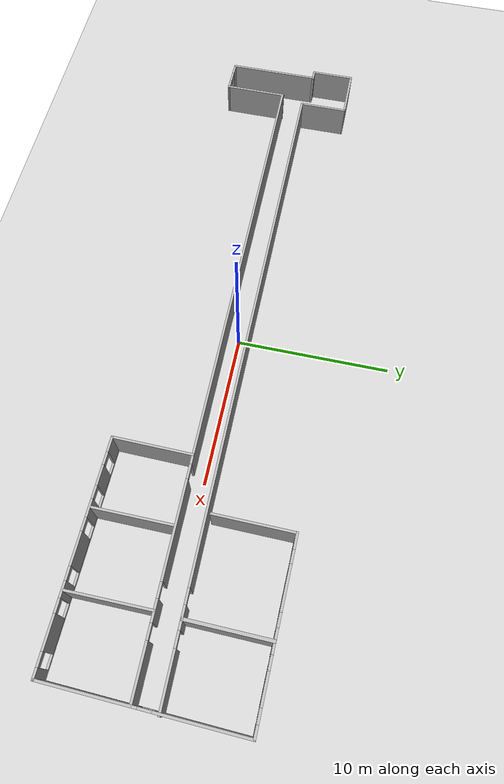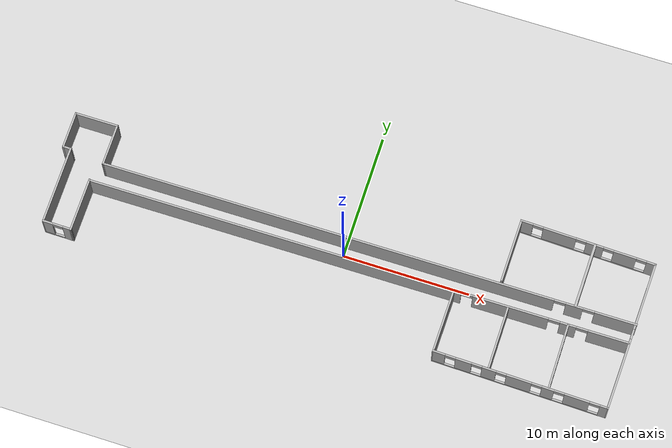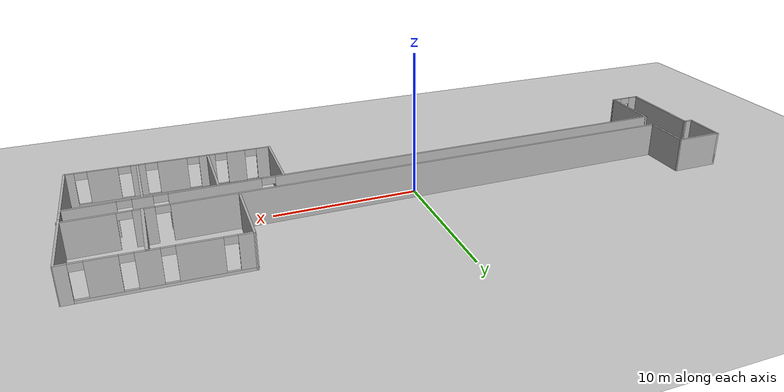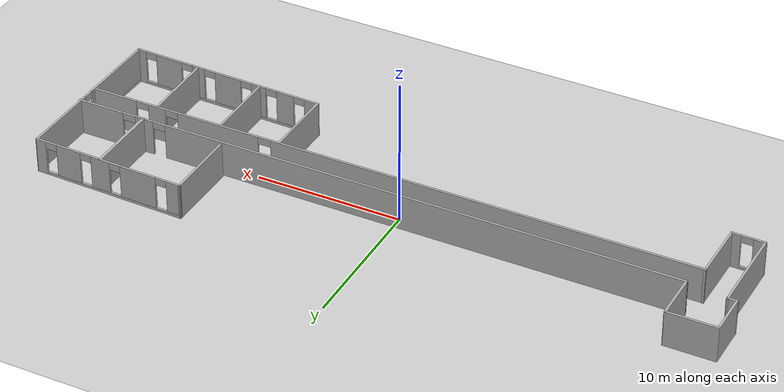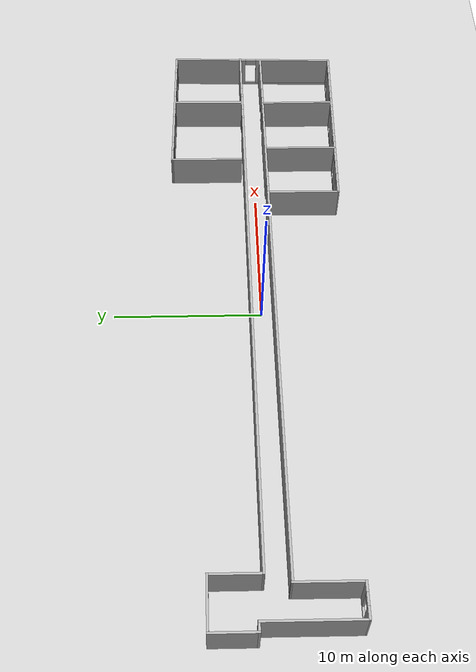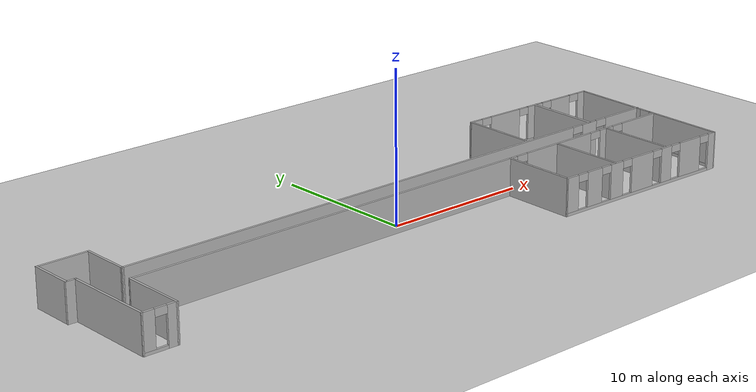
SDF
<?xml version="1.0" ?>
<sdf version="1.6">
  <world name="ico">

    <!-- A global light source -->
    <include>
      <uri>https://fuel.gazebosim.org/1.0/OpenRobotics/models/sun</uri>
    </include>
    <!-- A ground plane -->
    <include>
      <uri>https://fuel.gazebosim.org/1.0/OpenRobotics/models/Ground Plane</uri>
    </include>
    <!-- Turn off the built-in grid -->
    <scene>
      <grid>false</grid>
    </scene>

    <include>
      <uri>model://pbr_gazebo/models/ico</uri>
      <pose>0 0 0 0 0 0</pose>
    </include>

  </world>
</sdf>

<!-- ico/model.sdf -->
<sdf version='1.6'>

  <model name='ico_v1'>
      <pose>0.0 0.0 0 0 -0 0</pose>
      <link name='Wall_1'>
        <pose>22.5814 -0.145499 0 0 0 -1.59766</pose>
        <visual name='Wall_1_Visual_0'>
          <pose frame=''>-3.25721 0 1.25 0 -0 0</pose>
          <geometry>
            <box>
              <size>5.44978 0.15 2.5</size>
            </box>
          </geometry>
          <material> <!-- Gazebo/Grey -->
            <ambient>1 1 1 1</ambient>
            <diffuse>0.7 0.7 0.7 1</diffuse>
            <specular>0.01 0.01 0.01 1</specular>
          </material>
        </visual>
        <collision name='Wall_1_Collision_0'>
          <geometry>
            <box>
              <size>5.44978 0.15 2.5</size>
            </box>
          </geometry>
          <pose frame=''>-3.25721 0 1.25 0 -0 0</pose>
          <max_contacts>10</max_contacts>
          <surface>
            <contact>
              <ode/>
            </contact>
            <bounce/>
            <friction>
              <ode/>
            </friction>
          </surface>
        </collision>
        <visual name='Wall_1_Visual_1'>
          <pose frame=''>2.72489 0 0.1 0 -0 0</pose>
          <geometry>
            <box>
              <size>6.51441 0.15 0.2</size>
            </box>
          </geometry>
          <material> <!-- Gazebo/Grey -->
            <ambient>1 1 1 1</ambient>
            <diffuse>0.7 0.7 0.7 1</diffuse>
            <specular>0.01 0.01 0.01 1</specular>
          </material>
        </visual>
        <collision name='Wall_1_Collision_1'>
          <geometry>
            <box>
              <size>6.51441 0.15 0.2</size>
            </box>
          </geometry>
          <pose frame=''>2.72489 0 0.1 0 -0 0</pose>
          <max_contacts>10</max_contacts>
          <surface>
            <contact>
              <ode/>
            </contact>
            <bounce/>
            <friction>
              <ode/>
            </friction>
          </surface>
        </collision>
        <visual name='Wall_1_Visual_2'>
          <pose frame=''>3.12489 0 1.35 0 -0 0</pose>
          <geometry>
            <box>
              <size>5.71441 0.15 2.3</size>
            </box>
          </geometry>
          <material> <!-- Gazebo/Grey -->
            <ambient>1 1 1 1</ambient>
            <diffuse>0.7 0.7 0.7 1</diffuse>
            <specular>0.01 0.01 0.01 1</specular>
          </material>
        </visual>
        <collision name='Wall_1_Collision_2'>
          <geometry>
            <box>
              <size>5.71441 0.15 2.3</size>
            </box>
          </geometry>
          <pose frame=''>3.12489 0 1.35 0 -0 0</pose>
          <max_contacts>10</max_contacts>
          <surface>
            <contact>
              <ode/>
            </contact>
            <bounce/>
            <friction>
              <ode/>
            </friction>
          </surface>
        </collision>
        <visual name='Wall_1_Visual_3'>
          <pose frame=''>-0.132319 0 2.25 0 -0 0</pose>
          <geometry>
            <box>
              <size>0.8 0.15 0.5</size>
            </box>
          </geometry>
          <material> <!-- Gazebo/Grey -->
            <ambient>1 1 1 1</ambient>
            <diffuse>0.7 0.7 0.7 1</diffuse>
            <specular>0.01 0.01 0.01 1</specular>
          </material>
        </visual>
        <collision name='Wall_1_Collision_3'>
          <geometry>
            <box>
              <size>0.8 0.15 0.5</size>
            </box>
          </geometry>
          <pose frame=''>-0.132319 0 2.25 0 -0 0</pose>
          <max_contacts>10</max_contacts>
          <surface>
            <contact>
              <ode/>
            </contact>
            <bounce/>
            <friction>
              <ode/>
            </friction>
          </surface>
        </collision>
        <self_collide>0</self_collide>
        <kinematic>0</kinematic>
      </link>
      <link name='Wall_11'>
        <pose frame=''>1.63642 0.752539 0 0 -0 0.001887</pose>
        <visual name='Wall_11_Visual_0'>
          <pose frame=''>-3.21659 0 1.25 0 -0 0</pose>
          <geometry>
            <box>
              <size>35.7724 0.15 2.5</size>
            </box>
          </geometry>
          <material> <!-- Gazebo/Grey -->
            <ambient>1 1 1 1</ambient>
            <diffuse>0.7 0.7 0.7 1</diffuse>
            <specular>0.01 0.01 0.01 1</specular>
          </material>
        </visual>
        <collision name='Wall_11_Collision_0'>
          <geometry>
            <box>
              <size>35.7724 0.15 2.5</size>
            </box>
          </geometry>
          <pose frame=''>-3.21659 0 1.25 0 -0 0</pose>
          <max_contacts>10</max_contacts>
          <surface>
            <contact>
              <ode/>
            </contact>
            <bounce/>
            <friction>
              <ode/>
            </friction>
          </surface>
        </collision>
        <visual name='Wall_11_Visual_1'>
          <pose frame=''>16.233 0 1.25 0 -0 0</pose>
          <geometry>
            <box>
              <size>1.32685 0.15 2.5</size>
            </box>
          </geometry>
          <material> <!-- Gazebo/Grey -->
            <ambient>1 1 1 1</ambient>
            <diffuse>0.7 0.7 0.7 1</diffuse>
            <specular>0.01 0.01 0.01 1</specular>
          </material>
        </visual>
        <collision name='Wall_11_Collision_1'>
          <geometry>
            <box>
              <size>1.32685 0.15 2.5</size>
            </box>
          </geometry>
          <pose frame=''>16.233 0 1.25 0 -0 0</pose>
          <max_contacts>10</max_contacts>
          <surface>
            <contact>
              <ode/>
            </contact>
            <bounce/>
            <friction>
              <ode/>
            </friction>
          </surface>
        </collision>
        <visual name='Wall_11_Visual_2'>
          <pose frame=''>19.4496 0 1.25 0 -0 0</pose>
          <geometry>
            <box>
              <size>3.30634 0.15 2.5</size>
            </box>
          </geometry>
          <material> <!-- Gazebo/Grey -->
            <ambient>1 1 1 1</ambient>
            <diffuse>0.7 0.7 0.7 1</diffuse>
            <specular>0.01 0.01 0.01 1</specular>
          </material>
        </visual>
        <collision name='Wall_11_Collision_2'>
          <geometry>
            <box>
              <size>3.30634 0.15 2.5</size>
            </box>
          </geometry>
          <pose frame=''>19.4496 0 1.25 0 -0 0</pose>
          <max_contacts>10</max_contacts>
          <surface>
            <contact>
              <ode/>
            </contact>
            <bounce/>
            <friction>
              <ode/>
            </friction>
          </surface>
        </collision>
        <visual name='Wall_11_Visual_3'>
          <pose frame=''>15.1196 0 2.25 0 -0 0</pose>
          <geometry>
            <box>
              <size>0.9 0.15 0.5</size>
            </box>
          </geometry>
          <material> <!-- Gazebo/Grey -->
            <ambient>1 1 1 1</ambient>
            <diffuse>0.7 0.7 0.7 1</diffuse>
            <specular>0.01 0.01 0.01 1</specular>
          </material>
        </visual>
        <collision name='Wall_11_Collision_3'>
          <geometry>
            <box>
              <size>0.9 0.15 0.5</size>
            </box>
          </geometry>
          <pose frame=''>15.1196 0 2.25 0 -0 0</pose>
          <max_contacts>10</max_contacts>
          <surface>
            <contact>
              <ode/>
            </contact>
            <bounce/>
            <friction>
              <ode/>
            </friction>
          </surface>
        </collision>
        <visual name='Wall_11_Visual_4'>
          <pose frame=''>17.3465 0 2.25 0 -0 0</pose>
          <geometry>
            <box>
              <size>0.9 0.15 0.5</size>
            </box>
          </geometry>
          <material> <!-- Gazebo/Grey -->
            <ambient>1 1 1 1</ambient>
            <diffuse>0.7 0.7 0.7 1</diffuse>
            <specular>0.01 0.01 0.01 1</specular>
          </material>
        </visual>
        <collision name='Wall_11_Collision_4'>
          <geometry>
            <box>
              <size>0.9 0.15 0.5</size>
            </box>
          </geometry>
          <pose frame=''>17.3465 0 2.25 0 -0 0</pose>
          <max_contacts>10</max_contacts>
          <surface>
            <contact>
              <ode/>
            </contact>
            <bounce/>
            <friction>
              <ode/>
            </friction>
          </surface>
        </collision>
        <self_collide>0</self_collide>
        <kinematic>0</kinematic>
      </link>
      <link name='Wall_13'>
        <pose frame=''>1.29371 -0.816594 0 0 0 -3.13848</pose>
        <visual name='Wall_13_Visual_0'>
          <pose frame=''>-19.6869 0 1.25 0 -0 0</pose>
          <geometry>
            <box>
              <size>3.22871 0.15 2.5</size>
            </box>
          </geometry>
          <material> <!-- Gazebo/Grey -->
            <ambient>1 1 1 1</ambient>
            <diffuse>0.7 0.7 0.7 1</diffuse>
            <specular>0.01 0.01 0.01 1</specular>
          </material>
        </visual>
        <collision name='Wall_13_Collision_0'>
          <geometry>
            <box>
              <size>3.22871 0.15 2.5</size>
            </box>
          </geometry>
          <pose frame=''>-19.6869 0 1.25 0 -0 0</pose>
          <max_contacts>10</max_contacts>
          <surface>
            <contact>
              <ode/>
            </contact>
            <bounce/>
            <friction>
              <ode/>
            </friction>
          </surface>
        </collision>
        <visual name='Wall_13_Visual_1'>
          <pose frame=''>-16.5425 0 1.25 0 -0 0</pose>
          <geometry>
            <box>
              <size>1.25995 0.15 2.5</size>
            </box>
          </geometry>
          <material> <!-- Gazebo/Grey -->
            <ambient>1 1 1 1</ambient>
            <diffuse>0.7 0.7 0.7 1</diffuse>
            <specular>0.01 0.01 0.01 1</specular>
          </material>
        </visual>
        <collision name='Wall_13_Collision_1'>
          <geometry>
            <box>
              <size>1.25995 0.15 2.5</size>
            </box>
          </geometry>
          <pose frame=''>-16.5425 0 1.25 0 -0 0</pose>
          <max_contacts>10</max_contacts>
          <surface>
            <contact>
              <ode/>
            </contact>
            <bounce/>
            <friction>
              <ode/>
            </friction>
          </surface>
        </collision>
        <visual name='Wall_13_Visual_2'>
          <pose frame=''>-12.0715 0 1.25 0 -0 0</pose>
          <geometry>
            <box>
              <size>5.88212 0.15 2.5</size>
            </box>
          </geometry>
          <material> <!-- Gazebo/Grey -->
            <ambient>1 1 1 1</ambient>
            <diffuse>0.7 0.7 0.7 1</diffuse>
            <specular>0.01 0.01 0.01 1</specular>
          </material>
        </visual>
        <collision name='Wall_13_Collision_2'>
          <geometry>
            <box>
              <size>5.88212 0.15 2.5</size>
            </box>
          </geometry>
          <pose frame=''>-12.0715 0 1.25 0 -0 0</pose>
          <max_contacts>10</max_contacts>
          <surface>
            <contact>
              <ode/>
            </contact>
            <bounce/>
            <friction>
              <ode/>
            </friction>
          </surface>
        </collision>
        <visual name='Wall_13_Visual_3'>
          <pose frame=''>6.53539 0 1.25 0 -0 0</pose>
          <geometry>
            <box>
              <size>29.5317 0.15 2.5</size>
            </box>
          </geometry>
          <material> <!-- Gazebo/Grey -->
            <ambient>1 1 1 1</ambient>
            <diffuse>0.7 0.7 0.7 1</diffuse>
            <specular>0.01 0.01 0.01 1</specular>
          </material>
        </visual>
        <collision name='Wall_13_Collision_3'>
          <geometry>
            <box>
              <size>29.5317 0.15 2.5</size>
            </box>
          </geometry>
          <pose frame=''>6.53539 0 1.25 0 -0 0</pose>
          <max_contacts>10</max_contacts>
          <surface>
            <contact>
              <ode/>
            </contact>
            <bounce/>
            <friction>
              <ode/>
            </friction>
          </surface>
        </collision>
        <visual name='Wall_13_Visual_4'>
          <pose frame=''>-17.6225 0 2.25 0 -0 0</pose>
          <geometry>
            <box>
              <size>0.9 0.15 0.5</size>
            </box>
          </geometry>
          <material> <!-- Gazebo/Grey -->
            <ambient>1 1 1 1</ambient>
            <diffuse>0.7 0.7 0.7 1</diffuse>
            <specular>0.01 0.01 0.01 1</specular>
          </material>
        </visual>
        <collision name='Wall_13_Collision_4'>
          <geometry>
            <box>
              <size>0.9 0.15 0.5</size>
            </box>
          </geometry>
          <pose frame=''>-17.6225 0 2.25 0 -0 0</pose>
          <max_contacts>10</max_contacts>
          <surface>
            <contact>
              <ode/>
            </contact>
            <bounce/>
            <friction>
              <ode/>
            </friction>
          </surface>
        </collision>
        <visual name='Wall_13_Visual_5'>
          <pose frame=''>-15.4626 0 2.25 0 -0 0</pose>
          <geometry>
            <box>
              <size>0.9 0.15 0.5</size>
            </box>
          </geometry>
          <material> <!-- Gazebo/Grey -->
            <ambient>1 1 1 1</ambient>
            <diffuse>0.7 0.7 0.7 1</diffuse>
            <specular>0.01 0.01 0.01 1</specular>
          </material>
        </visual>
        <collision name='Wall_13_Collision_5'>
          <geometry>
            <box>
              <size>0.9 0.15 0.5</size>
            </box>
          </geometry>
          <pose frame=''>-15.4626 0 2.25 0 -0 0</pose>
          <max_contacts>10</max_contacts>
          <surface>
            <contact>
              <ode/>
            </contact>
            <bounce/>
            <friction>
              <ode/>
            </friction>
          </surface>
        </collision>
        <visual name='Wall_13_Visual_6'>
          <pose frame=''>-8.68046 0 2.25 0 -0 0</pose>
          <geometry>
            <box>
              <size>0.9 0.15 0.5</size>
            </box>
          </geometry>
          <material> <!-- Gazebo/Grey -->
            <ambient>1 1 1 1</ambient>
            <diffuse>0.7 0.7 0.7 1</diffuse>
            <specular>0.01 0.01 0.01 1</specular>
          </material>
        </visual>
        <collision name='Wall_13_Collision_6'>
          <geometry>
            <box>
              <size>0.9 0.15 0.5</size>
            </box>
          </geometry>
          <pose frame=''>-8.68046 0 2.25 0 -0 0</pose>
          <max_contacts>10</max_contacts>
          <surface>
            <contact>
              <ode/>
            </contact>
            <bounce/>
            <friction>
              <ode/>
            </friction>
          </surface>
        </collision>
        <self_collide>0</self_collide>
        <kinematic>0</kinematic>
      </link>
      <link name='Wall_14'>
        <collision name='Wall_14_Collision'>
          <geometry>
            <box>
              <size>4.3243 0.15 2.5</size>
            </box>
          </geometry>
          <pose frame=''>0 0 1.25 0 -0 0</pose>
          <max_contacts>10</max_contacts>
          <surface>
            <contact>
              <ode/>
            </contact>
            <bounce/>
            <friction>
              <ode/>
            </friction>
          </surface>
        </collision>
        <visual name='Wall_14_Visual'>
          <pose frame=''>0 0 1.25 0 -0 0</pose>
          <geometry>
            <box>
              <size>4.3243 0.15 2.5</size>
            </box>
          </geometry>
          <material> <!-- Gazebo/Grey -->
            <ambient>1 1 1 1</ambient>
            <diffuse>0.7 0.7 0.7 1</diffuse>
            <specular>0.01 0.01 0.01 1</specular>
          </material>
        </visual>
        <pose frame=''>-19.9395 -2.9399 0 0 0 -1.57427</pose>
        <self_collide>0</self_collide>
        <kinematic>0</kinematic>
      </link>
      <link name='Wall_15'>
        <pose frame=''>-21.0445 -5.0203 0 0 -0 3.13545</pose>
        <visual name='Wall_15_Visual_0'>
          <pose frame=''>-0.815889 0 1.25 0 -0 0</pose>
          <geometry>
            <box>
              <size>0.713613 0.15 2.5</size>
            </box>
          </geometry>
          <material> <!-- Gazebo/Grey -->
            <ambient>1 1 1 1</ambient>
            <diffuse>0.7 0.7 0.7 1</diffuse>
            <specular>0.01 0.01 0.01 1</specular>
          </material>
        </visual>
        <collision name='Wall_15_Collision_0'>
          <geometry>
            <box>
              <size>0.713613 0.15 2.5</size>
            </box>
          </geometry>
          <pose frame=''>-0.815889 0 1.25 0 -0 0</pose>
          <max_contacts>10</max_contacts>
          <surface>
            <contact>
              <ode/>
            </contact>
            <bounce/>
            <friction>
              <ode/>
            </friction>
          </surface>
        </collision>
        <visual name='Wall_15_Visual_1'>
          <pose frame=''>0.356806 0 0.1 0 -0 0</pose>
          <geometry>
            <box>
              <size>1.63178 0.15 0.2</size>
            </box>
          </geometry>
          <material> <!-- Gazebo/Grey -->
            <ambient>1 1 1 1</ambient>
            <diffuse>0.7 0.7 0.7 1</diffuse>
            <specular>0.01 0.01 0.01 1</specular>
          </material>
        </visual>
        <collision name='Wall_15_Collision_1'>
          <geometry>
            <box>
              <size>1.63178 0.15 0.2</size>
            </box>
          </geometry>
          <pose frame=''>0.356806 0 0.1 0 -0 0</pose>
          <max_contacts>10</max_contacts>
          <surface>
            <contact>
              <ode/>
            </contact>
            <bounce/>
            <friction>
              <ode/>
            </friction>
          </surface>
        </collision>
        <visual name='Wall_15_Visual_2'>
          <pose frame=''>0.756806 0 1.35 0 -0 0</pose>
          <geometry>
            <box>
              <size>0.831779 0.15 2.3</size>
            </box>
          </geometry>
          <material> <!-- Gazebo/Grey -->
            <ambient>1 1 1 1</ambient>
            <diffuse>0.7 0.7 0.7 1</diffuse>
            <specular>0.01 0.01 0.01 1</specular>
          </material>
        </visual>
        <collision name='Wall_15_Collision_2'>
          <geometry>
            <box>
              <size>0.831779 0.15 2.3</size>
            </box>
          </geometry>
          <pose frame=''>0.756806 0 1.35 0 -0 0</pose>
          <max_contacts>10</max_contacts>
          <surface>
            <contact>
              <ode/>
            </contact>
            <bounce/>
            <friction>
              <ode/>
            </friction>
          </surface>
        </collision>
        <visual name='Wall_15_Visual_3'>
          <pose frame=''>-0.059083 0 2.25 0 -0 0</pose>
          <geometry>
            <box>
              <size>0.8 0.15 0.5</size>
            </box>
          </geometry>
          <material> <!-- Gazebo/Grey -->
            <ambient>1 1 1 1</ambient>
            <diffuse>0.7 0.7 0.7 1</diffuse>
            <specular>0.01 0.01 0.01 1</specular>
          </material>
        </visual>
        <collision name='Wall_15_Collision_3'>
          <geometry>
            <box>
              <size>0.8 0.15 0.5</size>
            </box>
          </geometry>
          <pose frame=''>-0.059083 0 2.25 0 -0 0</pose>
          <max_contacts>10</max_contacts>
          <surface>
            <contact>
              <ode/>
            </contact>
            <bounce/>
            <friction>
              <ode/>
            </friction>
          </surface>
        </collision>
        <self_collide>0</self_collide>
        <kinematic>0</kinematic>
      </link>
      <link name='Wall_16'>
        <collision name='Wall_16_Collision'>
          <geometry>
            <box>
              <size>6.25 0.15 2.5</size>
            </box>
          </geometry>
          <pose frame=''>0 0 1.25 0 -0 0</pose>
          <max_contacts>10</max_contacts>
          <surface>
            <contact>
              <ode/>
            </contact>
            <bounce/>
            <friction>
              <ode/>
            </friction>
          </surface>
        </collision>
        <visual name='Wall_16_Visual'>
          <pose frame=''>0 0 1.25 0 -0 0</pose>
          <geometry>
            <box>
              <size>6.25 0.15 2.5</size>
            </box>
          </geometry>
          <material> <!-- Gazebo/Grey -->
            <ambient>1 1 1 1</ambient>
            <diffuse>0.7 0.7 0.7 1</diffuse>
            <specular>0.01 0.01 0.01 1</specular>
          </material>
        </visual>
        <pose frame=''>-22.1421 -1.96356 0 0 -0 1.5708</pose>
        <self_collide>0</self_collide>
        <kinematic>0</kinematic>
      </link>
      <link name='Wall_17'>
        <collision name='Wall_17_Collision'>
          <geometry>
            <box>
              <size>0.75 0.15 2.5</size>
            </box>
          </geometry>
          <pose frame=''>0 0 1.25 0 -0 0</pose>
          <max_contacts>10</max_contacts>
          <surface>
            <contact>
              <ode/>
            </contact>
            <bounce/>
            <friction>
              <ode/>
            </friction>
          </surface>
        </collision>
        <visual name='Wall_17_Visual'>
          <pose frame=''>0 0 1.25 0 -0 0</pose>
          <geometry>
            <box>
              <size>0.75 0.15 2.5</size>
            </box>
          </geometry>
          <material> <!-- Gazebo/Grey -->
            <ambient>1 1 1 1</ambient>
            <diffuse>0.7 0.7 0.7 1</diffuse>
            <specular>0.01 0.01 0.01 1</specular>
          </material>
        </visual>
        <pose frame=''>-22.4421 1.08644 0 0 -0 3.14159</pose>
        <self_collide>0</self_collide>
        <kinematic>0</kinematic>
      </link>
      <link name='Wall_18'>
        <collision name='Wall_18_Collision'>
          <geometry>
            <box>
              <size>3 0.15 2.5</size>
            </box>
          </geometry>
          <pose frame=''>0 0 1.25 0 -0 0</pose>
          <max_contacts>10</max_contacts>
          <surface>
            <contact>
              <ode/>
            </contact>
            <bounce/>
            <friction>
              <ode/>
            </friction>
          </surface>
        </collision>
        <visual name='Wall_18_Visual'>
          <pose frame=''>0 0 1.25 0 -0 0</pose>
          <geometry>
            <box>
              <size>3 0.15 2.5</size>
            </box>
          </geometry>
          <material> <!-- Gazebo/Grey -->
            <ambient>1 1 1 1</ambient>
            <diffuse>0.7 0.7 0.7 1</diffuse>
            <specular>0.01 0.01 0.01 1</specular>
          </material>
        </visual>
        <pose frame=''>-22.7421 2.51144 0 0 -0 1.5708</pose>
        <self_collide>0</self_collide>
        <kinematic>0</kinematic>
      </link>
      <link name='Wall_19'>
        <collision name='Wall_19_Collision'>
          <geometry>
            <box>
              <size>3.5 0.15 2.5</size>
            </box>
          </geometry>
          <pose frame=''>0 0 1.25 0 -0 0</pose>
          <max_contacts>10</max_contacts>
          <surface>
            <contact>
              <ode/>
            </contact>
            <bounce/>
            <friction>
              <ode/>
            </friction>
          </surface>
        </collision>
        <visual name='Wall_19_Visual'>
          <pose frame=''>0 0 1.25 0 -0 0</pose>
          <geometry>
            <box>
              <size>3.5 0.15 2.5</size>
            </box>
          </geometry>
          <material> <!-- Gazebo/Grey -->
            <ambient>1 1 1 1</ambient>
            <diffuse>0.7 0.7 0.7 1</diffuse>
            <specular>0.01 0.01 0.01 1</specular>
          </material>
        </visual>
        <pose frame=''>-21.0671 3.93644 0 0 -0 0</pose>
        <self_collide>0</self_collide>
        <kinematic>0</kinematic>
      </link>
      <link name='Wall_2'>
        <pose frame=''>15.6515 -5.9116 0 0 -0 3.12109</pose>
        <visual name='Wall_2_Visual_0'>
          <pose frame=''>-6.51118 0 1.25 0 -0 0</pose>
          <geometry>
            <box>
              <size>0.67288 0.15 2.5</size>
            </box>
          </geometry>
          <material> <!-- Gazebo/Grey -->
            <ambient>1 1 1 1</ambient>
            <diffuse>0.7 0.7 0.7 1</diffuse>
            <specular>0.01 0.01 0.01 1</specular>
          </material>
        </visual>
        <collision name='Wall_2_Collision_0'>
          <geometry>
            <box>
              <size>0.67288 0.15 2.5</size>
            </box>
          </geometry>
          <pose frame=''>-6.51118 0 1.25 0 -0 0</pose>
          <max_contacts>10</max_contacts>
          <surface>
            <contact>
              <ode/>
            </contact>
            <bounce/>
            <friction>
              <ode/>
            </friction>
          </surface>
        </collision>
        <visual name='Wall_2_Visual_1'>
          <pose frame=''>0.33644 0 0.1 0 -0 0</pose>
          <geometry>
            <box>
              <size>13.0224 0.15 0.2</size>
            </box>
          </geometry>
          <material> <!-- Gazebo/Grey -->
            <ambient>1 1 1 1</ambient>
            <diffuse>0.7 0.7 0.7 1</diffuse>
            <specular>0.01 0.01 0.01 1</specular>
          </material>
        </visual>
        <collision name='Wall_2_Collision_1'>
          <geometry>
            <box>
              <size>13.0224 0.15 0.2</size>
            </box>
          </geometry>
          <pose frame=''>0.33644 0 0.1 0 -0 0</pose>
          <max_contacts>10</max_contacts>
          <surface>
            <contact>
              <ode/>
            </contact>
            <bounce/>
            <friction>
              <ode/>
            </friction>
          </surface>
        </collision>
        <visual name='Wall_2_Visual_2'>
          <pose frame=''>-4.40222 0 1.35 0 -0 0</pose>
          <geometry>
            <box>
              <size>1.94504 0.15 2.3</size>
            </box>
          </geometry>
          <material> <!-- Gazebo/Grey -->
            <ambient>1 1 1 1</ambient>
            <diffuse>0.7 0.7 0.7 1</diffuse>
            <specular>0.01 0.01 0.01 1</specular>
          </material>
        </visual>
        <collision name='Wall_2_Collision_2'>
          <geometry>
            <box>
              <size>1.94504 0.15 2.3</size>
            </box>
          </geometry>
          <pose frame=''>-4.40222 0 1.35 0 -0 0</pose>
          <max_contacts>10</max_contacts>
          <surface>
            <contact>
              <ode/>
            </contact>
            <bounce/>
            <friction>
              <ode/>
            </friction>
          </surface>
        </collision>
        <visual name='Wall_2_Visual_3'>
          <pose frame=''>-2.15842 0 1.35 0 -0 0</pose>
          <geometry>
            <box>
              <size>0.942582 0.15 2.3</size>
            </box>
          </geometry>
          <material> <!-- Gazebo/Grey -->
            <ambient>1 1 1 1</ambient>
            <diffuse>0.7 0.7 0.7 1</diffuse>
            <specular>0.01 0.01 0.01 1</specular>
          </material>
        </visual>
        <collision name='Wall_2_Collision_3'>
          <geometry>
            <box>
              <size>0.942582 0.15 2.3</size>
            </box>
          </geometry>
          <pose frame=''>-2.15842 0 1.35 0 -0 0</pose>
          <max_contacts>10</max_contacts>
          <surface>
            <contact>
              <ode/>
            </contact>
            <bounce/>
            <friction>
              <ode/>
            </friction>
          </surface>
        </collision>
        <visual name='Wall_2_Visual_4'>
          <pose frame=''>0.091765 0 1.35 0 -0 0</pose>
          <geometry>
            <box>
              <size>1.95778 0.15 2.3</size>
            </box>
          </geometry>
          <material> <!-- Gazebo/Grey -->
            <ambient>1 1 1 1</ambient>
            <diffuse>0.7 0.7 0.7 1</diffuse>
            <specular>0.01 0.01 0.01 1</specular>
          </material>
        </visual>
        <collision name='Wall_2_Collision_4'>
          <geometry>
            <box>
              <size>1.95778 0.15 2.3</size>
            </box>
          </geometry>
          <pose frame=''>0.091765 0 1.35 0 -0 0</pose>
          <max_contacts>10</max_contacts>
          <surface>
            <contact>
              <ode/>
            </contact>
            <bounce/>
            <friction>
              <ode/>
            </friction>
          </surface>
        </collision>
        <visual name='Wall_2_Visual_5'>
          <pose frame=''>2.41773 0 1.35 0 -0 0</pose>
          <geometry>
            <box>
              <size>1.09416 0.15 2.3</size>
            </box>
          </geometry>
          <material> <!-- Gazebo/Grey -->
            <ambient>1 1 1 1</ambient>
            <diffuse>0.7 0.7 0.7 1</diffuse>
            <specular>0.01 0.01 0.01 1</specular>
          </material>
        </visual>
        <collision name='Wall_2_Collision_5'>
          <geometry>
            <box>
              <size>1.09416 0.15 2.3</size>
            </box>
          </geometry>
          <pose frame=''>2.41773 0 1.35 0 -0 0</pose>
          <max_contacts>10</max_contacts>
          <surface>
            <contact>
              <ode/>
            </contact>
            <bounce/>
            <friction>
              <ode/>
            </friction>
          </surface>
        </collision>
        <visual name='Wall_2_Visual_6'>
          <pose frame=''>4.39797 0 1.35 0 -0 0</pose>
          <geometry>
            <box>
              <size>1.26632 0.15 2.3</size>
            </box>
          </geometry>
          <material> <!-- Gazebo/Grey -->
            <ambient>1 1 1 1</ambient>
            <diffuse>0.7 0.7 0.7 1</diffuse>
            <specular>0.01 0.01 0.01 1</specular>
          </material>
        </visual>
        <collision name='Wall_2_Collision_6'>
          <geometry>
            <box>
              <size>1.26632 0.15 2.3</size>
            </box>
          </geometry>
          <pose frame=''>4.39797 0 1.35 0 -0 0</pose>
          <max_contacts>10</max_contacts>
          <surface>
            <contact>
              <ode/>
            </contact>
            <bounce/>
            <friction>
              <ode/>
            </friction>
          </surface>
        </collision>
        <visual name='Wall_2_Visual_7'>
          <pose frame=''>6.33938 0 1.35 0 -0 0</pose>
          <geometry>
            <box>
              <size>1.0165 0.15 2.3</size>
            </box>
          </geometry>
          <material> <!-- Gazebo/Grey -->
            <ambient>1 1 1 1</ambient>
            <diffuse>0.7 0.7 0.7 1</diffuse>
            <specular>0.01 0.01 0.01 1</specular>
          </material>
        </visual>
        <collision name='Wall_2_Collision_7'>
          <geometry>
            <box>
              <size>1.0165 0.15 2.3</size>
            </box>
          </geometry>
          <pose frame=''>6.33938 0 1.35 0 -0 0</pose>
          <max_contacts>10</max_contacts>
          <surface>
            <contact>
              <ode/>
            </contact>
            <bounce/>
            <friction>
              <ode/>
            </friction>
          </surface>
        </collision>
        <visual name='Wall_2_Visual_8'>
          <pose frame=''>-5.77474 0 2.25 0 -0 0</pose>
          <geometry>
            <box>
              <size>0.8 0.15 0.5</size>
            </box>
          </geometry>
          <material> <!-- Gazebo/Grey -->
            <ambient>1 1 1 1</ambient>
            <diffuse>0.7 0.7 0.7 1</diffuse>
            <specular>0.01 0.01 0.01 1</specular>
          </material>
        </visual>
        <collision name='Wall_2_Collision_8'>
          <geometry>
            <box>
              <size>0.8 0.15 0.5</size>
            </box>
          </geometry>
          <pose frame=''>-5.77474 0 2.25 0 -0 0</pose>
          <max_contacts>10</max_contacts>
          <surface>
            <contact>
              <ode/>
            </contact>
            <bounce/>
            <friction>
              <ode/>
            </friction>
          </surface>
        </collision>
        <visual name='Wall_2_Visual_9'>
          <pose frame=''>-3.02971 0 2.25 0 -0 0</pose>
          <geometry>
            <box>
              <size>0.8 0.15 0.5</size>
            </box>
          </geometry>
          <material> <!-- Gazebo/Grey -->
            <ambient>1 1 1 1</ambient>
            <diffuse>0.7 0.7 0.7 1</diffuse>
            <specular>0.01 0.01 0.01 1</specular>
          </material>
        </visual>
        <collision name='Wall_2_Collision_9'>
          <geometry>
            <box>
              <size>0.8 0.15 0.5</size>
            </box>
          </geometry>
          <pose frame=''>-3.02971 0 2.25 0 -0 0</pose>
          <max_contacts>10</max_contacts>
          <surface>
            <contact>
              <ode/>
            </contact>
            <bounce/>
            <friction>
              <ode/>
            </friction>
          </surface>
        </collision>
        <visual name='Wall_2_Visual_10'>
          <pose frame=''>-1.28712 0 2.25 0 -0 0</pose>
          <geometry>
            <box>
              <size>0.8 0.15 0.5</size>
            </box>
          </geometry>
          <material> <!-- Gazebo/Grey -->
            <ambient>1 1 1 1</ambient>
            <diffuse>0.7 0.7 0.7 1</diffuse>
            <specular>0.01 0.01 0.01 1</specular>
          </material>
        </visual>
        <collision name='Wall_2_Collision_10'>
          <geometry>
            <box>
              <size>0.8 0.15 0.5</size>
            </box>
          </geometry>
          <pose frame=''>-1.28712 0 2.25 0 -0 0</pose>
          <max_contacts>10</max_contacts>
          <surface>
            <contact>
              <ode/>
            </contact>
            <bounce/>
            <friction>
              <ode/>
            </friction>
          </surface>
        </collision>
        <visual name='Wall_2_Visual_11'>
          <pose frame=''>1.47065 0 2.25 0 -0 0</pose>
          <geometry>
            <box>
              <size>0.8 0.15 0.5</size>
            </box>
          </geometry>
          <material> <!-- Gazebo/Grey -->
            <ambient>1 1 1 1</ambient>
            <diffuse>0.7 0.7 0.7 1</diffuse>
            <specular>0.01 0.01 0.01 1</specular>
          </material>
        </visual>
        <collision name='Wall_2_Collision_11'>
          <geometry>
            <box>
              <size>0.8 0.15 0.5</size>
            </box>
          </geometry>
          <pose frame=''>1.47065 0 2.25 0 -0 0</pose>
          <max_contacts>10</max_contacts>
          <surface>
            <contact>
              <ode/>
            </contact>
            <bounce/>
            <friction>
              <ode/>
            </friction>
          </surface>
        </collision>
        <visual name='Wall_2_Visual_12'>
          <pose frame=''>3.36481 0 2.25 0 -0 0</pose>
          <geometry>
            <box>
              <size>0.8 0.15 0.5</size>
            </box>
          </geometry>
          <material> <!-- Gazebo/Grey -->
            <ambient>1 1 1 1</ambient>
            <diffuse>0.7 0.7 0.7 1</diffuse>
            <specular>0.01 0.01 0.01 1</specular>
          </material>
        </visual>
        <collision name='Wall_2_Collision_12'>
          <geometry>
            <box>
              <size>0.8 0.15 0.5</size>
            </box>
          </geometry>
          <pose frame=''>3.36481 0 2.25 0 -0 0</pose>
          <max_contacts>10</max_contacts>
          <surface>
            <contact>
              <ode/>
            </contact>
            <bounce/>
            <friction>
              <ode/>
            </friction>
          </surface>
        </collision>
        <visual name='Wall_2_Visual_13'>
          <pose frame=''>5.43113 0 2.25 0 -0 0</pose>
          <geometry>
            <box>
              <size>0.8 0.15 0.5</size>
            </box>
          </geometry>
          <material> <!-- Gazebo/Grey -->
            <ambient>1 1 1 1</ambient>
            <diffuse>0.7 0.7 0.7 1</diffuse>
            <specular>0.01 0.01 0.01 1</specular>
          </material>
        </visual>
        <collision name='Wall_2_Collision_13'>
          <geometry>
            <box>
              <size>0.8 0.15 0.5</size>
            </box>
          </geometry>
          <pose frame=''>5.43113 0 2.25 0 -0 0</pose>
          <max_contacts>10</max_contacts>
          <surface>
            <contact>
              <ode/>
            </contact>
            <bounce/>
            <friction>
              <ode/>
            </friction>
          </surface>
        </collision>
        <self_collide>0</self_collide>
        <kinematic>0</kinematic>
      </link>
      <link name='Wall_20'>
        <collision name='Wall_20_Collision'>
          <geometry>
            <box>
              <size>3.37358 0.15 2.5</size>
            </box>
          </geometry>
          <pose frame=''>0 0 1.25 0 -0 0</pose>
          <max_contacts>10</max_contacts>
          <surface>
            <contact>
              <ode/>
            </contact>
            <bounce/>
            <friction>
              <ode/>
            </friction>
          </surface>
        </collision>
        <visual name='Wall_20_Visual'>
          <pose frame=''>0 0 1.25 0 -0 0</pose>
          <geometry>
            <box>
              <size>3.37358 0.15 2.5</size>
            </box>
          </geometry>
          <material> <!-- Gazebo/Grey -->
            <ambient>1 1 1 1</ambient>
            <diffuse>0.7 0.7 0.7 1</diffuse>
            <specular>0.01 0.01 0.01 1</specular>
          </material>
        </visual>
        <pose frame=''>-19.3917 2.32465 0 0 0 -1.57055</pose>
        <self_collide>0</self_collide>
        <kinematic>0</kinematic>
      </link>
      <link name='Wall_22'>
        <collision name='Wall_22_Collision'>
          <geometry>
            <box>
              <size>5.22543 0.2 2.5</size>
            </box>
          </geometry>
          <pose frame=''>0 0 1.25 0 -0 0</pose>
          <max_contacts>10</max_contacts>
          <surface>
            <contact>
              <ode/>
            </contact>
            <bounce/>
            <friction>
              <ode/>
            </friction>
          </surface>
        </collision>
        <visual name='Wall_22_Visual'>
          <pose frame=''>0 0 1.25 0 -0 0</pose>
          <geometry>
            <box>
              <size>5.22543 0.2 2.5</size>
            </box>
          </geometry>
          <material> <!-- Gazebo/Grey -->
            <ambient>1 1 1 1</ambient>
            <diffuse>0.7 0.7 0.7 1</diffuse>
            <specular>0.01 0.01 0.01 1</specular>
          </material>
        </visual>
        <pose frame=''>17.9762 3.34453 0 0 -0 1.55766</pose>
        <self_collide>0</self_collide>
        <kinematic>0</kinematic>
      </link>
      <link name='Wall_24'>
        <collision name='Wall_24_Collision'>
          <geometry>
            <box>
              <size>5.16016 0.15 2.5</size>
            </box>
          </geometry>
          <pose frame=''>0 0 1.25 0 -0 0</pose>
          <max_contacts>10</max_contacts>
          <surface>
            <contact>
              <ode/>
            </contact>
            <bounce/>
            <friction>
              <ode/>
            </friction>
          </surface>
        </collision>
        <visual name='Wall_24_Visual'>
          <pose frame=''>0 0 1.25 0 -0 0</pose>
          <geometry>
            <box>
              <size>5.16016 0.15 2.5</size>
            </box>
          </geometry>
          <material> <!-- Gazebo/Grey -->
            <ambient>1 1 1 1</ambient>
            <diffuse>0.7 0.7 0.7 1</diffuse>
            <specular>0.01 0.01 0.01 1</specular>
          </material>
        </visual>
        <pose frame=''>17.8416 -3.33785 0 0 0 -1.5708</pose>
        <self_collide>0</self_collide>
        <kinematic>0</kinematic>
      </link>
      <link name='Wall_26'>
        <collision name='Wall_26_Collision'>
          <geometry>
            <box>
              <size>5.03004 0.15 2.5</size>
            </box>
          </geometry>
          <pose frame=''>0 0 1.25 0 -0 0</pose>
          <max_contacts>10</max_contacts>
          <surface>
            <contact>
              <ode/>
            </contact>
            <bounce/>
            <friction>
              <ode/>
            </friction>
          </surface>
        </collision>
        <visual name='Wall_26_Visual'>
          <pose frame=''>0 0 1.25 0 -0 0</pose>
          <geometry>
            <box>
              <size>5.03004 0.15 2.5</size>
            </box>
          </geometry>
          <material> <!-- Gazebo/Grey -->
            <ambient>1 1 1 1</ambient>
            <diffuse>0.7 0.7 0.7 1</diffuse>
            <specular>0.01 0.01 0.01 1</specular>
          </material>
        </visual>
        <pose frame=''>13.1816 -3.35285 0 0 -0 1.5667</pose>
        <self_collide>0</self_collide>
        <kinematic>0</kinematic>
      </link>
      <link name='Wall_3'>
        <collision name='Wall_3_Collision'>
          <geometry>
            <box>
              <size>5.10982 0.15 2.5</size>
            </box>
          </geometry>
          <pose frame=''>0 0 1.25 0 -0 0</pose>
          <max_contacts>10</max_contacts>
          <surface>
            <contact>
              <ode/>
            </contact>
            <bounce/>
            <friction>
              <ode/>
            </friction>
          </surface>
        </collision>
        <visual name='Wall_3_Visual'>
          <pose frame=''>0 0 1.25 0 -0 0</pose>
          <geometry>
            <box>
              <size>5.10982 0.15 2.5</size>
            </box>
          </geometry>
          <material> <!-- Gazebo/Grey -->
            <ambient>1 1 1 1</ambient>
            <diffuse>0.7 0.7 0.7 1</diffuse>
            <specular>0.01 0.01 0.01 1</specular>
          </material>
        </visual>
        <pose frame=''>8.91336 -3.29305 0 0 -0 1.55746</pose>
        <self_collide>0</self_collide>
        <kinematic>0</kinematic>
      </link>
      <link name='Wall_5'>
        <pose frame=''>17.4567 5.90494 0 0 -0 3.11407</pose>
        <visual name='Wall_5_Visual_0'>
          <pose frame=''>-4.97979 0 1.25 0 -0 0</pose>
          <geometry>
            <box>
              <size>0.7612 0.15 2.5</size>
            </box>
          </geometry>
          <material> <!-- Gazebo/Grey -->
            <ambient>1 1 1 1</ambient>
            <diffuse>0.7 0.7 0.7 1</diffuse>
            <specular>0.01 0.01 0.01 1</specular>
          </material>
        </visual>
        <collision name='Wall_5_Collision_0'>
          <geometry>
            <box>
              <size>0.7612 0.15 2.5</size>
            </box>
          </geometry>
          <pose frame=''>-4.97979 0 1.25 0 -0 0</pose>
          <max_contacts>10</max_contacts>
          <surface>
            <contact>
              <ode/>
            </contact>
            <bounce/>
            <friction>
              <ode/>
            </friction>
          </surface>
        </collision>
        <visual name='Wall_5_Visual_1'>
          <pose frame=''>0.3806 0 0.1 0 -0 0</pose>
          <geometry>
            <box>
              <size>9.95958 0.15 0.2</size>
            </box>
          </geometry>
          <material> <!-- Gazebo/Grey -->
            <ambient>1 1 1 1</ambient>
            <diffuse>0.7 0.7 0.7 1</diffuse>
            <specular>0.01 0.01 0.01 1</specular>
          </material>
        </visual>
        <collision name='Wall_5_Collision_1'>
          <geometry>
            <box>
              <size>9.95958 0.15 0.2</size>
            </box>
          </geometry>
          <pose frame=''>0.3806 0 0.1 0 -0 0</pose>
          <max_contacts>10</max_contacts>
          <surface>
            <contact>
              <ode/>
            </contact>
            <bounce/>
            <friction>
              <ode/>
            </friction>
          </surface>
        </collision>
        <visual name='Wall_5_Visual_2'>
          <pose frame=''>-2.90984 0 1.35 0 -0 0</pose>
          <geometry>
            <box>
              <size>1.77869 0.15 2.3</size>
            </box>
          </geometry>
          <material> <!-- Gazebo/Grey -->
            <ambient>1 1 1 1</ambient>
            <diffuse>0.7 0.7 0.7 1</diffuse>
            <specular>0.01 0.01 0.01 1</specular>
          </material>
        </visual>
        <collision name='Wall_5_Collision_2'>
          <geometry>
            <box>
              <size>1.77869 0.15 2.3</size>
            </box>
          </geometry>
          <pose frame=''>-2.90984 0 1.35 0 -0 0</pose>
          <max_contacts>10</max_contacts>
          <surface>
            <contact>
              <ode/>
            </contact>
            <bounce/>
            <friction>
              <ode/>
            </friction>
          </surface>
        </collision>
        <visual name='Wall_5_Visual_3'>
          <pose frame=''>-0.537345 0 1.35 0 -0 0</pose>
          <geometry>
            <box>
              <size>1.36631 0.15 2.3</size>
            </box>
          </geometry>
          <material> <!-- Gazebo/Grey -->
            <ambient>1 1 1 1</ambient>
            <diffuse>0.7 0.7 0.7 1</diffuse>
            <specular>0.01 0.01 0.01 1</specular>
          </material>
        </visual>
        <collision name='Wall_5_Collision_3'>
          <geometry>
            <box>
              <size>1.36631 0.15 2.3</size>
            </box>
          </geometry>
          <pose frame=''>-0.537345 0 1.35 0 -0 0</pose>
          <max_contacts>10</max_contacts>
          <surface>
            <contact>
              <ode/>
            </contact>
            <bounce/>
            <friction>
              <ode/>
            </friction>
          </surface>
        </collision>
        <visual name='Wall_5_Visual_4'>
          <pose frame=''>2.24758 0 1.35 0 -0 0</pose>
          <geometry>
            <box>
              <size>2.60354 0.15 2.3</size>
            </box>
          </geometry>
          <material> <!-- Gazebo/Grey -->
            <ambient>1 1 1 1</ambient>
            <diffuse>0.7 0.7 0.7 1</diffuse>
            <specular>0.01 0.01 0.01 1</specular>
          </material>
        </visual>
        <collision name='Wall_5_Collision_4'>
          <geometry>
            <box>
              <size>2.60354 0.15 2.3</size>
            </box>
          </geometry>
          <pose frame=''>2.24758 0 1.35 0 -0 0</pose>
          <max_contacts>10</max_contacts>
          <surface>
            <contact>
              <ode/>
            </contact>
            <bounce/>
            <friction>
              <ode/>
            </friction>
          </surface>
        </collision>
        <visual name='Wall_5_Visual_5'>
          <pose frame=''>4.85487 0 1.35 0 -0 0</pose>
          <geometry>
            <box>
              <size>1.01104 0.15 2.3</size>
            </box>
          </geometry>
          <material> <!-- Gazebo/Grey -->
            <ambient>1 1 1 1</ambient>
            <diffuse>0.7 0.7 0.7 1</diffuse>
            <specular>0.01 0.01 0.01 1</specular>
          </material>
        </visual>
        <collision name='Wall_5_Collision_5'>
          <geometry>
            <box>
              <size>1.01104 0.15 2.3</size>
            </box>
          </geometry>
          <pose frame=''>4.85487 0 1.35 0 -0 0</pose>
          <max_contacts>10</max_contacts>
          <surface>
            <contact>
              <ode/>
            </contact>
            <bounce/>
            <friction>
              <ode/>
            </friction>
          </surface>
        </collision>
        <visual name='Wall_5_Visual_6'>
          <pose frame=''>-4.19919 0 2.25 0 -0 0</pose>
          <geometry>
            <box>
              <size>0.8 0.15 0.5</size>
            </box>
          </geometry>
          <material> <!-- Gazebo/Grey -->
            <ambient>1 1 1 1</ambient>
            <diffuse>0.7 0.7 0.7 1</diffuse>
            <specular>0.01 0.01 0.01 1</specular>
          </material>
        </visual>
        <collision name='Wall_5_Collision_6'>
          <geometry>
            <box>
              <size>0.8 0.15 0.5</size>
            </box>
          </geometry>
          <pose frame=''>-4.19919 0 2.25 0 -0 0</pose>
          <max_contacts>10</max_contacts>
          <surface>
            <contact>
              <ode/>
            </contact>
            <bounce/>
            <friction>
              <ode/>
            </friction>
          </surface>
        </collision>
        <visual name='Wall_5_Visual_7'>
          <pose frame=''>-1.6205 0 2.25 0 -0 0</pose>
          <geometry>
            <box>
              <size>0.8 0.15 0.5</size>
            </box>
          </geometry>
          <material> <!-- Gazebo/Grey -->
            <ambient>1 1 1 1</ambient>
            <diffuse>0.7 0.7 0.7 1</diffuse>
            <specular>0.01 0.01 0.01 1</specular>
          </material>
        </visual>
        <collision name='Wall_5_Collision_7'>
          <geometry>
            <box>
              <size>0.8 0.15 0.5</size>
            </box>
          </geometry>
          <pose frame=''>-1.6205 0 2.25 0 -0 0</pose>
          <max_contacts>10</max_contacts>
          <surface>
            <contact>
              <ode/>
            </contact>
            <bounce/>
            <friction>
              <ode/>
            </friction>
          </surface>
        </collision>
        <visual name='Wall_5_Visual_8'>
          <pose frame=''>0.54581 0 2.25 0 -0 0</pose>
          <geometry>
            <box>
              <size>0.8 0.15 0.5</size>
            </box>
          </geometry>
          <material> <!-- Gazebo/Grey -->
            <ambient>1 1 1 1</ambient>
            <diffuse>0.7 0.7 0.7 1</diffuse>
            <specular>0.01 0.01 0.01 1</specular>
          </material>
        </visual>
        <collision name='Wall_5_Collision_8'>
          <geometry>
            <box>
              <size>0.8 0.15 0.5</size>
            </box>
          </geometry>
          <pose frame=''>0.54581 0 2.25 0 -0 0</pose>
          <max_contacts>10</max_contacts>
          <surface>
            <contact>
              <ode/>
            </contact>
            <bounce/>
            <friction>
              <ode/>
            </friction>
          </surface>
        </collision>
        <visual name='Wall_5_Visual_9'>
          <pose frame=''>3.94935 0 2.25 0 -0 0</pose>
          <geometry>
            <box>
              <size>0.8 0.15 0.5</size>
            </box>
          </geometry>
          <material> <!-- Gazebo/Grey -->
            <ambient>1 1 1 1</ambient>
            <diffuse>0.7 0.7 0.7 1</diffuse>
            <specular>0.01 0.01 0.01 1</specular>
          </material>
        </visual>
        <collision name='Wall_5_Collision_9'>
          <geometry>
            <box>
              <size>0.8 0.15 0.5</size>
            </box>
          </geometry>
          <pose frame=''>3.94935 0 2.25 0 -0 0</pose>
          <max_contacts>10</max_contacts>
          <surface>
            <contact>
              <ode/>
            </contact>
            <bounce/>
            <friction>
              <ode/>
            </friction>
          </surface>
        </collision>
        <self_collide>0</self_collide>
        <kinematic>0</kinematic>
      </link>
      <link name='Wall_6'>
        <collision name='Wall_6_Collision'>
          <geometry>
            <box>
              <size>5.13611 0.15 2.5</size>
            </box>
          </geometry>
          <pose frame=''>0 0 1.25 0 -0 0</pose>
          <max_contacts>10</max_contacts>
          <surface>
            <contact>
              <ode/>
            </contact>
            <bounce/>
            <friction>
              <ode/>
            </friction>
          </surface>
        </collision>
        <visual name='Wall_6_Visual'>
          <pose frame=''>0 0 1.25 0 -0 0</pose>
          <geometry>
            <box>
              <size>5.13611 0.15 2.5</size>
            </box>
          </geometry>
          <material> <!-- Gazebo/Grey -->
            <ambient>1 1 1 1</ambient>
            <diffuse>0.7 0.7 0.7 1</diffuse>
            <specular>0.01 0.01 0.01 1</specular>
          </material>
        </visual>
        <pose frame=''>12.1469 3.5575 0 0 0 -1.58141</pose>
        <self_collide>0</self_collide>
        <kinematic>0</kinematic>
      </link>
      <static>1</static>
    </model>

</sdf>
